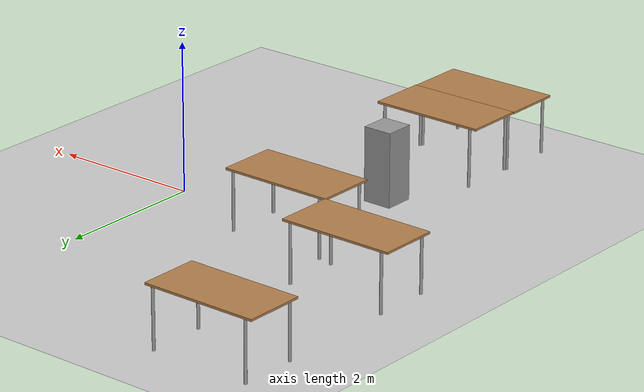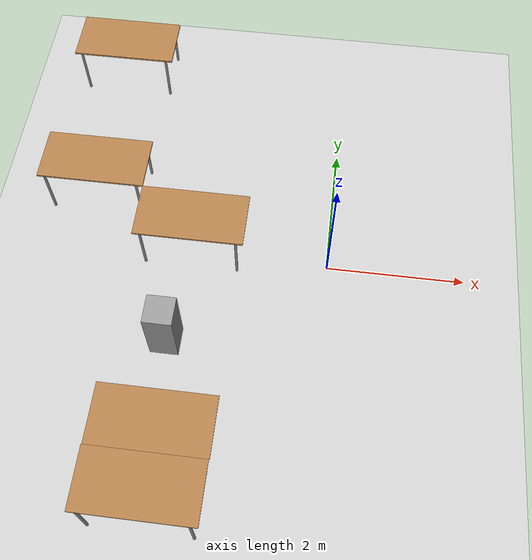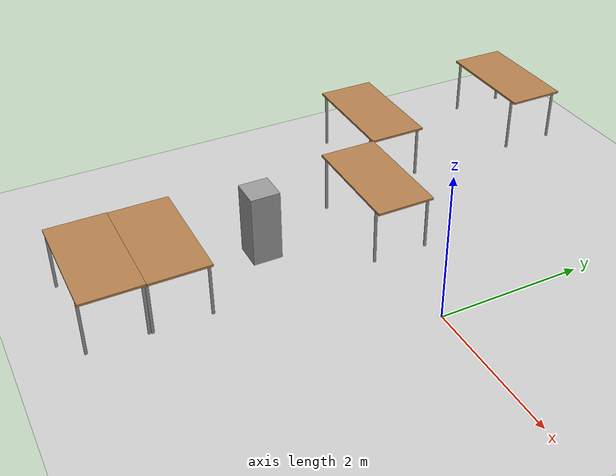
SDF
<sdf version="1.6">
 <world name="default">
  <model name="ground_plane">
   <static>1</static>
   <link name="link">
    <collision name="collision">
     <geometry><plane><normal>0 0 1</normal><size>100 100</size></plane></geometry>
     <surface><friction><ode><mu>100</mu><mu2>50</mu2></ode></friction></surface>
    </collision>
    <visual name="visual">
     <cast_shadows>0</cast_shadows>
     <geometry><plane><normal>0 0 1</normal><size>100 100</size></plane></geometry>
     <material>
      <script><uri>file://media/materials/scripts/gazebo.material</uri><name>Gazebo/Grey</name></script>
     </material>
    </visual>
   </link>
  </model>
  <model name="tablealt_0_clone_8">
   <link name="link">
    <inertial>
     <mass>1</mass>
     <inertia><ixx>1</ixx><ixy>0</ixy><ixz>0</ixz><iyy>1</iyy><iyz>0</iyz><izz>1</izz></inertia>
    </inertial>
    <visual name="back_right_leg">
     <pose>-0.68 -0.38 0.4 0 -0 0</pose>
     <geometry><cylinder><radius>0.02</radius><length>0.8</length></cylinder></geometry>
     <material>
      <script><uri>file://media/materials/scripts/gazebo.material</uri><name>Gazebo/Grey</name></script>
      <shader type="pixel"><normal_map>__default__</normal_map></shader>
      <ambient>0.3 0.3 0.3 1</ambient>
      <diffuse>0.7 0.7 0.7 1</diffuse>
      <specular>0.01 0.01 0.01 1</specular>
      <emissive>0 0 0 1</emissive>
     </material>
    </visual>
    <visual name="back_left_leg">
     <pose>-0.68 0.38 0.4 0 -0 0</pose>
     <geometry><cylinder><radius>0.02</radius><length>0.8</length></cylinder></geometry>
     <material>
      <script><uri>file://media/materials/scripts/gazebo.material</uri><name>Gazebo/Grey</name></script>
      <shader type="pixel"><normal_map>__default__</normal_map></shader>
      <ambient>0.3 0.3 0.3 1</ambient>
      <diffuse>0.7 0.7 0.7 1</diffuse>
      <specular>0.01 0.01 0.01 1</specular>
      <emissive>0 0 0 1</emissive>
     </material>
    </visual>
    <visual name="visual1">
     <pose>0 0 0.8 0 -0 0</pose>
     <geometry><box><size>1.57 0.8 0.03</size></box></geometry>
     <material>
      <script><uri>file://media/materials/scripts/gazebo.material</uri><name>Gazebo/Wood</name></script>
      <shader type="pixel"><normal_map>__default__</normal_map></shader>
      <ambient>0.92 0.92 0.68 1</ambient>
      <diffuse>1 1 1 1</diffuse>
      <specular>0.2 0.2 0.2 1</specular>
      <emissive>0 0 0 1</emissive>
     </material>
    </visual>
    <visual name="front_left_leg">
     <pose>0.68 0.38 0.4 0 -0 0</pose>
     <geometry><cylinder><radius>0.02</radius><length>0.8</length></cylinder></geometry>
     <material>
      <script><uri>file://media/materials/scripts/gazebo.material</uri><name>Gazebo/Grey</name></script>
      <shader type="pixel"><normal_map>__default__</normal_map></shader>
      <ambient>0.3 0.3 0.3 1</ambient>
      <diffuse>0.7 0.7 0.7 1</diffuse>
      <specular>0.01 0.01 0.01 1</specular>
      <emissive>0 0 0 1</emissive>
     </material>
    </visual>
    <visual name="front_right_leg">
     <pose>0.68 -0.38 0.4 0 -0 0</pose>
     <geometry><cylinder><radius>0.02</radius><length>0.8</length></cylinder></geometry>
     <material>
      <script><uri>file://media/materials/scripts/gazebo.material</uri><name>Gazebo/Grey</name></script>
      <shader type="pixel"><normal_map>__default__</normal_map></shader>
      <ambient>0.3 0.3 0.3 1</ambient>
      <diffuse>0.7 0.7 0.7 1</diffuse>
      <specular>0.01 0.01 0.01 1</specular>
      <emissive>0 0 0 1</emissive>
     </material>
    </visual>
    <collision name="front_right_leg">
     <pose>0.68 -0.38 0.4 0 -0 0</pose>
     <geometry><cylinder><radius>0.02</radius><length>0.8</length></cylinder></geometry>
     <surface>
      <friction>
       <ode><mu>1</mu><mu2>1</mu2><fdir1>0 0 0</fdir1><slip1>0</slip1><slip2>0</slip2></ode>
       <torsional>
        <coefficient>1</coefficient>
        <patch_radius>0</patch_radius>
        <surface_radius>0</surface_radius>
        <use_patch_radius>1</use_patch_radius>
        <ode><slip>0</slip></ode>
       </torsional>
      </friction>
      <bounce><restitution_coefficient>0</restitution_coefficient><threshold>1e+06</threshold></bounce>
      <contact>
       <collide_without_contact>0</collide_without_contact>
       <collide_without_contact_bitmask>1</collide_without_contact_bitmask>
       <collide_bitmask>1</collide_bitmask>
       <ode>
        <soft_cfm>0</soft_cfm>
        <soft_erp>0.2</soft_erp>
        <kp>1e+13</kp>
        <kd>1</kd>
        <max_vel>0.01</max_vel>
        <min_depth>0</min_depth>
       </ode>
       <bullet>
        <split_impulse>1</split_impulse>
        <split_impulse_penetration_threshold>-0.01</split_impulse_penetration_threshold>
        <soft_cfm>0</soft_cfm>
        <soft_erp>0.2</soft_erp>
        <kp>1e+13</kp>
        <kd>1</kd>
       </bullet>
      </contact>
     </surface>
    </collision>
    <collision name="surface">
     <pose>0 0 0.8 0 -0 0</pose>
     <geometry><box><size>1.5 0.8 0.03</size></box></geometry>
     <surface>
      <friction>
       <ode><mu>0.6</mu><mu2>0.6</mu2><fdir1>0 0 0</fdir1><slip1>0</slip1><slip2>0</slip2></ode>
       <torsional>
        <coefficient>1</coefficient>
        <patch_radius>0</patch_radius>
        <surface_radius>0</surface_radius>
        <use_patch_radius>1</use_patch_radius>
        <ode><slip>0</slip></ode>
       </torsional>
      </friction>
      <bounce><restitution_coefficient>0</restitution_coefficient><threshold>1e+06</threshold></bounce>
      <contact>
       <collide_without_contact>0</collide_without_contact>
       <collide_without_contact_bitmask>1</collide_without_contact_bitmask>
       <collide_bitmask>1</collide_bitmask>
       <ode>
        <soft_cfm>0</soft_cfm>
        <soft_erp>0.2</soft_erp>
        <kp>1e+13</kp>
        <kd>1</kd>
        <max_vel>0.01</max_vel>
        <min_depth>0</min_depth>
       </ode>
       <bullet>
        <split_impulse>1</split_impulse>
        <split_impulse_penetration_threshold>-0.01</split_impulse_penetration_threshold>
        <soft_cfm>0</soft_cfm>
        <soft_erp>0.2</soft_erp>
        <kp>1e+13</kp>
        <kd>1</kd>
       </bullet>
      </contact>
     </surface>
    </collision>
    <collision name="front_left_leg">
     <pose>0.68 0.38 0.4 0 -0 0</pose>
     <geometry><cylinder><radius>0.02</radius><length>0.8</length></cylinder></geometry>
     <surface>
      <friction>
       <ode><mu>1</mu><mu2>1</mu2><fdir1>0 0 0</fdir1><slip1>0</slip1><slip2>0</slip2></ode>
       <torsional>
        <coefficient>1</coefficient>
        <patch_radius>0</patch_radius>
        <surface_radius>0</surface_radius>
        <use_patch_radius>1</use_patch_radius>
        <ode><slip>0</slip></ode>
       </torsional>
      </friction>
      <bounce><restitution_coefficient>0</restitution_coefficient><threshold>1e+06</threshold></bounce>
      <contact>
       <collide_without_contact>0</collide_without_contact>
       <collide_without_contact_bitmask>1</collide_without_contact_bitmask>
       <collide_bitmask>1</collide_bitmask>
       <ode>
        <soft_cfm>0</soft_cfm>
        <soft_erp>0.2</soft_erp>
        <kp>1e+13</kp>
        <kd>1</kd>
        <max_vel>0.01</max_vel>
        <min_depth>0</min_depth>
       </ode>
       <bullet>
        <split_impulse>1</split_impulse>
        <split_impulse_penetration_threshold>-0.01</split_impulse_penetration_threshold>
        <soft_cfm>0</soft_cfm>
        <soft_erp>0.2</soft_erp>
        <kp>1e+13</kp>
        <kd>1</kd>
       </bullet>
      </contact>
     </surface>
    </collision>
    <collision name="back_left_leg">
     <pose>-0.68 0.38 0.4 0 -0 0</pose>
     <geometry><cylinder><radius>0.02</radius><length>0.8</length></cylinder></geometry>
     <surface>
      <friction>
       <ode><mu>1</mu><mu2>1</mu2><fdir1>0 0 0</fdir1><slip1>0</slip1><slip2>0</slip2></ode>
       <torsional>
        <coefficient>1</coefficient>
        <patch_radius>0</patch_radius>
        <surface_radius>0</surface_radius>
        <use_patch_radius>1</use_patch_radius>
        <ode><slip>0</slip></ode>
       </torsional>
      </friction>
      <bounce><restitution_coefficient>0</restitution_coefficient><threshold>1e+06</threshold></bounce>
      <contact>
       <collide_without_contact>0</collide_without_contact>
       <collide_without_contact_bitmask>1</collide_without_contact_bitmask>
       <collide_bitmask>1</collide_bitmask>
       <ode>
        <soft_cfm>0</soft_cfm>
        <soft_erp>0.2</soft_erp>
        <kp>1e+13</kp>
        <kd>1</kd>
        <max_vel>0.01</max_vel>
        <min_depth>0</min_depth>
       </ode>
       <bullet>
        <split_impulse>1</split_impulse>
        <split_impulse_penetration_threshold>-0.01</split_impulse_penetration_threshold>
        <soft_cfm>0</soft_cfm>
        <soft_erp>0.2</soft_erp>
        <kp>1e+13</kp>
        <kd>1</kd>
       </bullet>
      </contact>
     </surface>
    </collision>
    <collision name="back_right_leg">
     <pose>-0.68 -0.38 0.4 0 -0 0</pose>
     <geometry><cylinder><radius>0.02</radius><length>0.8</length></cylinder></geometry>
     <surface>
      <friction>
       <ode><mu>1</mu><mu2>1</mu2><fdir1>0 0 0</fdir1><slip1>0</slip1><slip2>0</slip2></ode>
       <torsional>
        <coefficient>1</coefficient>
        <patch_radius>0</patch_radius>
        <surface_radius>0</surface_radius>
        <use_patch_radius>1</use_patch_radius>
        <ode><slip>0</slip></ode>
       </torsional>
      </friction>
      <bounce><restitution_coefficient>0</restitution_coefficient><threshold>1e+06</threshold></bounce>
      <contact>
       <collide_without_contact>0</collide_without_contact>
       <collide_without_contact_bitmask>1</collide_without_contact_bitmask>
       <collide_bitmask>1</collide_bitmask>
       <ode>
        <soft_cfm>0</soft_cfm>
        <soft_erp>0.2</soft_erp>
        <kp>1e+13</kp>
        <kd>1</kd>
        <max_vel>0.01</max_vel>
        <min_depth>0</min_depth>
       </ode>
       <bullet>
        <split_impulse>1</split_impulse>
        <split_impulse_penetration_threshold>-0.01</split_impulse_penetration_threshold>
        <soft_cfm>0</soft_cfm>
        <soft_erp>0.2</soft_erp>
        <kp>1e+13</kp>
        <kd>1</kd>
       </bullet>
      </contact>
     </surface>
    </collision>
   </link>
   <static>1</static>
   <pose>-3.56 3.39 0 0 -0 0</pose>
  </model>
  <model name="tablealt_0_clone_19">
   <link name="link">
    <inertial>
     <mass>1</mass>
     <inertia><ixx>1</ixx><ixy>0</ixy><ixz>0</ixz><iyy>1</iyy><iyz>0</iyz><izz>1</izz></inertia>
    </inertial>
    <visual name="back_right_leg">
     <pose>-0.68 -0.38 0.4 0 -0 0</pose>
     <geometry><cylinder><radius>0.02</radius><length>0.8</length></cylinder></geometry>
     <material>
      <script><uri>file://media/materials/scripts/gazebo.material</uri><name>Gazebo/Grey</name></script>
      <shader type="pixel"><normal_map>__default__</normal_map></shader>
      <ambient>0.3 0.3 0.3 1</ambient>
      <diffuse>0.7 0.7 0.7 1</diffuse>
      <specular>0.01 0.01 0.01 1</specular>
      <emissive>0 0 0 1</emissive>
     </material>
    </visual>
    <visual name="back_left_leg">
     <pose>-0.68 0.38 0.4 0 -0 0</pose>
     <geometry><cylinder><radius>0.02</radius><length>0.8</length></cylinder></geometry>
     <material>
      <script><uri>file://media/materials/scripts/gazebo.material</uri><name>Gazebo/Grey</name></script>
      <shader type="pixel"><normal_map>__default__</normal_map></shader>
      <ambient>0.3 0.3 0.3 1</ambient>
      <diffuse>0.7 0.7 0.7 1</diffuse>
      <specular>0.01 0.01 0.01 1</specular>
      <emissive>0 0 0 1</emissive>
     </material>
    </visual>
    <visual name="visual1">
     <pose>0 0 0.8 0 -0 0</pose>
     <geometry><box><size>1.57 0.8 0.03</size></box></geometry>
     <material>
      <script><uri>file://media/materials/scripts/gazebo.material</uri><name>Gazebo/Wood</name></script>
      <shader type="pixel"><normal_map>__default__</normal_map></shader>
      <ambient>0.92 0.92 0.68 1</ambient>
      <diffuse>1 1 1 1</diffuse>
      <specular>0.2 0.2 0.2 1</specular>
      <emissive>0 0 0 1</emissive>
     </material>
    </visual>
    <visual name="front_left_leg">
     <pose>0.68 0.38 0.4 0 -0 0</pose>
     <geometry><cylinder><radius>0.02</radius><length>0.8</length></cylinder></geometry>
     <material>
      <script><uri>file://media/materials/scripts/gazebo.material</uri><name>Gazebo/Grey</name></script>
      <shader type="pixel"><normal_map>__default__</normal_map></shader>
      <ambient>0.3 0.3 0.3 1</ambient>
      <diffuse>0.7 0.7 0.7 1</diffuse>
      <specular>0.01 0.01 0.01 1</specular>
      <emissive>0 0 0 1</emissive>
     </material>
    </visual>
    <visual name="front_right_leg">
     <pose>0.68 -0.38 0.4 0 -0 0</pose>
     <geometry><cylinder><radius>0.02</radius><length>0.8</length></cylinder></geometry>
     <material>
      <script><uri>file://media/materials/scripts/gazebo.material</uri><name>Gazebo/Grey</name></script>
      <shader type="pixel"><normal_map>__default__</normal_map></shader>
      <ambient>0.3 0.3 0.3 1</ambient>
      <diffuse>0.7 0.7 0.7 1</diffuse>
      <specular>0.01 0.01 0.01 1</specular>
      <emissive>0 0 0 1</emissive>
     </material>
    </visual>
    <collision name="front_right_leg">
     <pose>0.68 -0.38 0.4 0 -0 0</pose>
     <geometry><cylinder><radius>0.02</radius><length>0.8</length></cylinder></geometry>
     <surface>
      <friction>
       <ode><mu>1</mu><mu2>1</mu2><fdir1>0 0 0</fdir1><slip1>0</slip1><slip2>0</slip2></ode>
       <torsional>
        <coefficient>1</coefficient>
        <patch_radius>0</patch_radius>
        <surface_radius>0</surface_radius>
        <use_patch_radius>1</use_patch_radius>
        <ode><slip>0</slip></ode>
       </torsional>
      </friction>
      <bounce><restitution_coefficient>0</restitution_coefficient><threshold>1e+06</threshold></bounce>
      <contact>
       <collide_without_contact>0</collide_without_contact>
       <collide_without_contact_bitmask>1</collide_without_contact_bitmask>
       <collide_bitmask>1</collide_bitmask>
       <ode>
        <soft_cfm>0</soft_cfm>
        <soft_erp>0.2</soft_erp>
        <kp>1e+13</kp>
        <kd>1</kd>
        <max_vel>0.01</max_vel>
        <min_depth>0</min_depth>
       </ode>
       <bullet>
        <split_impulse>1</split_impulse>
        <split_impulse_penetration_threshold>-0.01</split_impulse_penetration_threshold>
        <soft_cfm>0</soft_cfm>
        <soft_erp>0.2</soft_erp>
        <kp>1e+13</kp>
        <kd>1</kd>
       </bullet>
      </contact>
     </surface>
    </collision>
    <collision name="surface">
     <pose>0 0 0.8 0 -0 0</pose>
     <geometry><box><size>1.5 0.8 0.03</size></box></geometry>
     <surface>
      <friction>
       <ode><mu>0.6</mu><mu2>0.6</mu2><fdir1>0 0 0</fdir1><slip1>0</slip1><slip2>0</slip2></ode>
       <torsional>
        <coefficient>1</coefficient>
        <patch_radius>0</patch_radius>
        <surface_radius>0</surface_radius>
        <use_patch_radius>1</use_patch_radius>
        <ode><slip>0</slip></ode>
       </torsional>
      </friction>
      <bounce><restitution_coefficient>0</restitution_coefficient><threshold>1e+06</threshold></bounce>
      <contact>
       <collide_without_contact>0</collide_without_contact>
       <collide_without_contact_bitmask>1</collide_without_contact_bitmask>
       <collide_bitmask>1</collide_bitmask>
       <ode>
        <soft_cfm>0</soft_cfm>
        <soft_erp>0.2</soft_erp>
        <kp>1e+13</kp>
        <kd>1</kd>
        <max_vel>0.01</max_vel>
        <min_depth>0</min_depth>
       </ode>
       <bullet>
        <split_impulse>1</split_impulse>
        <split_impulse_penetration_threshold>-0.01</split_impulse_penetration_threshold>
        <soft_cfm>0</soft_cfm>
        <soft_erp>0.2</soft_erp>
        <kp>1e+13</kp>
        <kd>1</kd>
       </bullet>
      </contact>
     </surface>
    </collision>
    <collision name="front_left_leg">
     <pose>0.68 0.38 0.4 0 -0 0</pose>
     <geometry><cylinder><radius>0.02</radius><length>0.8</length></cylinder></geometry>
     <surface>
      <friction>
       <ode><mu>1</mu><mu2>1</mu2><fdir1>0 0 0</fdir1><slip1>0</slip1><slip2>0</slip2></ode>
       <torsional>
        <coefficient>1</coefficient>
        <patch_radius>0</patch_radius>
        <surface_radius>0</surface_radius>
        <use_patch_radius>1</use_patch_radius>
        <ode><slip>0</slip></ode>
       </torsional>
      </friction>
      <bounce><restitution_coefficient>0</restitution_coefficient><threshold>1e+06</threshold></bounce>
      <contact>
       <collide_without_contact>0</collide_without_contact>
       <collide_without_contact_bitmask>1</collide_without_contact_bitmask>
       <collide_bitmask>1</collide_bitmask>
       <ode>
        <soft_cfm>0</soft_cfm>
        <soft_erp>0.2</soft_erp>
        <kp>1e+13</kp>
        <kd>1</kd>
        <max_vel>0.01</max_vel>
        <min_depth>0</min_depth>
       </ode>
       <bullet>
        <split_impulse>1</split_impulse>
        <split_impulse_penetration_threshold>-0.01</split_impulse_penetration_threshold>
        <soft_cfm>0</soft_cfm>
        <soft_erp>0.2</soft_erp>
        <kp>1e+13</kp>
        <kd>1</kd>
       </bullet>
      </contact>
     </surface>
    </collision>
    <collision name="back_left_leg">
     <pose>-0.68 0.38 0.4 0 -0 0</pose>
     <geometry><cylinder><radius>0.02</radius><length>0.8</length></cylinder></geometry>
     <surface>
      <friction>
       <ode><mu>1</mu><mu2>1</mu2><fdir1>0 0 0</fdir1><slip1>0</slip1><slip2>0</slip2></ode>
       <torsional>
        <coefficient>1</coefficient>
        <patch_radius>0</patch_radius>
        <surface_radius>0</surface_radius>
        <use_patch_radius>1</use_patch_radius>
        <ode><slip>0</slip></ode>
       </torsional>
      </friction>
      <bounce><restitution_coefficient>0</restitution_coefficient><threshold>1e+06</threshold></bounce>
      <contact>
       <collide_without_contact>0</collide_without_contact>
       <collide_without_contact_bitmask>1</collide_without_contact_bitmask>
       <collide_bitmask>1</collide_bitmask>
       <ode>
        <soft_cfm>0</soft_cfm>
        <soft_erp>0.2</soft_erp>
        <kp>1e+13</kp>
        <kd>1</kd>
        <max_vel>0.01</max_vel>
        <min_depth>0</min_depth>
       </ode>
       <bullet>
        <split_impulse>1</split_impulse>
        <split_impulse_penetration_threshold>-0.01</split_impulse_penetration_threshold>
        <soft_cfm>0</soft_cfm>
        <soft_erp>0.2</soft_erp>
        <kp>1e+13</kp>
        <kd>1</kd>
       </bullet>
      </contact>
     </surface>
    </collision>
    <collision name="back_right_leg">
     <pose>-0.68 -0.38 0.4 0 -0 0</pose>
     <geometry><cylinder><radius>0.02</radius><length>0.8</length></cylinder></geometry>
     <surface>
      <friction>
       <ode><mu>1</mu><mu2>1</mu2><fdir1>0 0 0</fdir1><slip1>0</slip1><slip2>0</slip2></ode>
       <torsional>
        <coefficient>1</coefficient>
        <patch_radius>0</patch_radius>
        <surface_radius>0</surface_radius>
        <use_patch_radius>1</use_patch_radius>
        <ode><slip>0</slip></ode>
       </torsional>
      </friction>
      <bounce><restitution_coefficient>0</restitution_coefficient><threshold>1e+06</threshold></bounce>
      <contact>
       <collide_without_contact>0</collide_without_contact>
       <collide_without_contact_bitmask>1</collide_without_contact_bitmask>
       <collide_bitmask>1</collide_bitmask>
       <ode>
        <soft_cfm>0</soft_cfm>
        <soft_erp>0.2</soft_erp>
        <kp>1e+13</kp>
        <kd>1</kd>
        <max_vel>0.01</max_vel>
        <min_depth>0</min_depth>
       </ode>
       <bullet>
        <split_impulse>1</split_impulse>
        <split_impulse_penetration_threshold>-0.01</split_impulse_penetration_threshold>
        <soft_cfm>0</soft_cfm>
        <soft_erp>0.2</soft_erp>
        <kp>1e+13</kp>
        <kd>1</kd>
       </bullet>
      </contact>
     </surface>
    </collision>
   </link>
   <static>1</static>
   <pose>-3.56 0.99 0 0 -0 0</pose>
  </model>
  <model name="tablealt_0_clone_23">
   <link name="link">
    <inertial>
     <mass>1</mass>
     <inertia><ixx>1</ixx><ixy>0</ixy><ixz>0</ixz><iyy>1</iyy><iyz>0</iyz><izz>1</izz></inertia>
    </inertial>
    <visual name="back_right_leg">
     <pose>-0.68 -0.38 0.4 0 -0 0</pose>
     <geometry><cylinder><radius>0.02</radius><length>0.8</length></cylinder></geometry>
     <material>
      <script><uri>file://media/materials/scripts/gazebo.material</uri><name>Gazebo/Grey</name></script>
      <shader type="pixel"><normal_map>__default__</normal_map></shader>
      <ambient>0.3 0.3 0.3 1</ambient>
      <diffuse>0.7 0.7 0.7 1</diffuse>
      <specular>0.01 0.01 0.01 1</specular>
      <emissive>0 0 0 1</emissive>
     </material>
    </visual>
    <visual name="back_left_leg">
     <pose>-0.68 0.38 0.4 0 -0 0</pose>
     <geometry><cylinder><radius>0.02</radius><length>0.8</length></cylinder></geometry>
     <material>
      <script><uri>file://media/materials/scripts/gazebo.material</uri><name>Gazebo/Grey</name></script>
      <shader type="pixel"><normal_map>__default__</normal_map></shader>
      <ambient>0.3 0.3 0.3 1</ambient>
      <diffuse>0.7 0.7 0.7 1</diffuse>
      <specular>0.01 0.01 0.01 1</specular>
      <emissive>0 0 0 1</emissive>
     </material>
    </visual>
    <visual name="visual1">
     <pose>0 0 0.8 0 -0 0</pose>
     <geometry><box><size>1.57 0.8 0.03</size></box></geometry>
     <material>
      <script><uri>file://media/materials/scripts/gazebo.material</uri><name>Gazebo/Wood</name></script>
      <shader type="pixel"><normal_map>__default__</normal_map></shader>
      <ambient>0.92 0.92 0.68 1</ambient>
      <diffuse>1 1 1 1</diffuse>
      <specular>0.2 0.2 0.2 1</specular>
      <emissive>0 0 0 1</emissive>
     </material>
    </visual>
    <visual name="front_left_leg">
     <pose>0.68 0.38 0.4 0 -0 0</pose>
     <geometry><cylinder><radius>0.02</radius><length>0.8</length></cylinder></geometry>
     <material>
      <script><uri>file://media/materials/scripts/gazebo.material</uri><name>Gazebo/Grey</name></script>
      <shader type="pixel"><normal_map>__default__</normal_map></shader>
      <ambient>0.3 0.3 0.3 1</ambient>
      <diffuse>0.7 0.7 0.7 1</diffuse>
      <specular>0.01 0.01 0.01 1</specular>
      <emissive>0 0 0 1</emissive>
     </material>
    </visual>
    <visual name="front_right_leg">
     <pose>0.68 -0.38 0.4 0 -0 0</pose>
     <geometry><cylinder><radius>0.02</radius><length>0.8</length></cylinder></geometry>
     <material>
      <script><uri>file://media/materials/scripts/gazebo.material</uri><name>Gazebo/Grey</name></script>
      <shader type="pixel"><normal_map>__default__</normal_map></shader>
      <ambient>0.3 0.3 0.3 1</ambient>
      <diffuse>0.7 0.7 0.7 1</diffuse>
      <specular>0.01 0.01 0.01 1</specular>
      <emissive>0 0 0 1</emissive>
     </material>
    </visual>
    <collision name="front_right_leg">
     <pose>0.68 -0.38 0.4 0 -0 0</pose>
     <geometry><cylinder><radius>0.02</radius><length>0.8</length></cylinder></geometry>
     <surface>
      <friction>
       <ode><mu>1</mu><mu2>1</mu2><fdir1>0 0 0</fdir1><slip1>0</slip1><slip2>0</slip2></ode>
       <torsional>
        <coefficient>1</coefficient>
        <patch_radius>0</patch_radius>
        <surface_radius>0</surface_radius>
        <use_patch_radius>1</use_patch_radius>
        <ode><slip>0</slip></ode>
       </torsional>
      </friction>
      <bounce><restitution_coefficient>0</restitution_coefficient><threshold>1e+06</threshold></bounce>
      <contact>
       <collide_without_contact>0</collide_without_contact>
       <collide_without_contact_bitmask>1</collide_without_contact_bitmask>
       <collide_bitmask>1</collide_bitmask>
       <ode>
        <soft_cfm>0</soft_cfm>
        <soft_erp>0.2</soft_erp>
        <kp>1e+13</kp>
        <kd>1</kd>
        <max_vel>0.01</max_vel>
        <min_depth>0</min_depth>
       </ode>
       <bullet>
        <split_impulse>1</split_impulse>
        <split_impulse_penetration_threshold>-0.01</split_impulse_penetration_threshold>
        <soft_cfm>0</soft_cfm>
        <soft_erp>0.2</soft_erp>
        <kp>1e+13</kp>
        <kd>1</kd>
       </bullet>
      </contact>
     </surface>
    </collision>
    <collision name="surface">
     <pose>0 0 0.8 0 -0 0</pose>
     <geometry><box><size>1.5 0.8 0.03</size></box></geometry>
     <surface>
      <friction>
       <ode><mu>0.6</mu><mu2>0.6</mu2><fdir1>0 0 0</fdir1><slip1>0</slip1><slip2>0</slip2></ode>
       <torsional>
        <coefficient>1</coefficient>
        <patch_radius>0</patch_radius>
        <surface_radius>0</surface_radius>
        <use_patch_radius>1</use_patch_radius>
        <ode><slip>0</slip></ode>
       </torsional>
      </friction>
      <bounce><restitution_coefficient>0</restitution_coefficient><threshold>1e+06</threshold></bounce>
      <contact>
       <collide_without_contact>0</collide_without_contact>
       <collide_without_contact_bitmask>1</collide_without_contact_bitmask>
       <collide_bitmask>1</collide_bitmask>
       <ode>
        <soft_cfm>0</soft_cfm>
        <soft_erp>0.2</soft_erp>
        <kp>1e+13</kp>
        <kd>1</kd>
        <max_vel>0.01</max_vel>
        <min_depth>0</min_depth>
       </ode>
       <bullet>
        <split_impulse>1</split_impulse>
        <split_impulse_penetration_threshold>-0.01</split_impulse_penetration_threshold>
        <soft_cfm>0</soft_cfm>
        <soft_erp>0.2</soft_erp>
        <kp>1e+13</kp>
        <kd>1</kd>
       </bullet>
      </contact>
     </surface>
    </collision>
    <collision name="front_left_leg">
     <pose>0.68 0.38 0.4 0 -0 0</pose>
     <geometry><cylinder><radius>0.02</radius><length>0.8</length></cylinder></geometry>
     <surface>
      <friction>
       <ode><mu>1</mu><mu2>1</mu2><fdir1>0 0 0</fdir1><slip1>0</slip1><slip2>0</slip2></ode>
       <torsional>
        <coefficient>1</coefficient>
        <patch_radius>0</patch_radius>
        <surface_radius>0</surface_radius>
        <use_patch_radius>1</use_patch_radius>
        <ode><slip>0</slip></ode>
       </torsional>
      </friction>
      <bounce><restitution_coefficient>0</restitution_coefficient><threshold>1e+06</threshold></bounce>
      <contact>
       <collide_without_contact>0</collide_without_contact>
       <collide_without_contact_bitmask>1</collide_without_contact_bitmask>
       <collide_bitmask>1</collide_bitmask>
       <ode>
        <soft_cfm>0</soft_cfm>
        <soft_erp>0.2</soft_erp>
        <kp>1e+13</kp>
        <kd>1</kd>
        <max_vel>0.01</max_vel>
        <min_depth>0</min_depth>
       </ode>
       <bullet>
        <split_impulse>1</split_impulse>
        <split_impulse_penetration_threshold>-0.01</split_impulse_penetration_threshold>
        <soft_cfm>0</soft_cfm>
        <soft_erp>0.2</soft_erp>
        <kp>1e+13</kp>
        <kd>1</kd>
       </bullet>
      </contact>
     </surface>
    </collision>
    <collision name="back_left_leg">
     <pose>-0.68 0.38 0.4 0 -0 0</pose>
     <geometry><cylinder><radius>0.02</radius><length>0.8</length></cylinder></geometry>
     <surface>
      <friction>
       <ode><mu>1</mu><mu2>1</mu2><fdir1>0 0 0</fdir1><slip1>0</slip1><slip2>0</slip2></ode>
       <torsional>
        <coefficient>1</coefficient>
        <patch_radius>0</patch_radius>
        <surface_radius>0</surface_radius>
        <use_patch_radius>1</use_patch_radius>
        <ode><slip>0</slip></ode>
       </torsional>
      </friction>
      <bounce><restitution_coefficient>0</restitution_coefficient><threshold>1e+06</threshold></bounce>
      <contact>
       <collide_without_contact>0</collide_without_contact>
       <collide_without_contact_bitmask>1</collide_without_contact_bitmask>
       <collide_bitmask>1</collide_bitmask>
       <ode>
        <soft_cfm>0</soft_cfm>
        <soft_erp>0.2</soft_erp>
        <kp>1e+13</kp>
        <kd>1</kd>
        <max_vel>0.01</max_vel>
        <min_depth>0</min_depth>
       </ode>
       <bullet>
        <split_impulse>1</split_impulse>
        <split_impulse_penetration_threshold>-0.01</split_impulse_penetration_threshold>
        <soft_cfm>0</soft_cfm>
        <soft_erp>0.2</soft_erp>
        <kp>1e+13</kp>
        <kd>1</kd>
       </bullet>
      </contact>
     </surface>
    </collision>
    <collision name="back_right_leg">
     <pose>-0.68 -0.38 0.4 0 -0 0</pose>
     <geometry><cylinder><radius>0.02</radius><length>0.8</length></cylinder></geometry>
     <surface>
      <friction>
       <ode><mu>1</mu><mu2>1</mu2><fdir1>0 0 0</fdir1><slip1>0</slip1><slip2>0</slip2></ode>
       <torsional>
        <coefficient>1</coefficient>
        <patch_radius>0</patch_radius>
        <surface_radius>0</surface_radius>
        <use_patch_radius>1</use_patch_radius>
        <ode><slip>0</slip></ode>
       </torsional>
      </friction>
      <bounce><restitution_coefficient>0</restitution_coefficient><threshold>1e+06</threshold></bounce>
      <contact>
       <collide_without_contact>0</collide_without_contact>
       <collide_without_contact_bitmask>1</collide_without_contact_bitmask>
       <collide_bitmask>1</collide_bitmask>
       <ode>
        <soft_cfm>0</soft_cfm>
        <soft_erp>0.2</soft_erp>
        <kp>1e+13</kp>
        <kd>1</kd>
        <max_vel>0.01</max_vel>
        <min_depth>0</min_depth>
       </ode>
       <bullet>
        <split_impulse>1</split_impulse>
        <split_impulse_penetration_threshold>-0.01</split_impulse_penetration_threshold>
        <soft_cfm>0</soft_cfm>
        <soft_erp>0.2</soft_erp>
        <kp>1e+13</kp>
        <kd>1</kd>
       </bullet>
      </contact>
     </surface>
    </collision>
   </link>
   <static>1</static>
   <pose>-1.99 0.19 0 0 -0 0</pose>
  </model>
  <model name="tablealt_0_clone_26">
   <link name="link">
    <inertial>
     <mass>1</mass>
     <inertia><ixx>1</ixx><ixy>0</ixy><ixz>0</ixz><iyy>1</iyy><iyz>0</iyz><izz>1</izz></inertia>
    </inertial>
    <visual name="back_right_leg">
     <pose>-0.68 -0.38 0.4 0 -0 0</pose>
     <geometry><cylinder><radius>0.02</radius><length>0.8</length></cylinder></geometry>
     <material>
      <script><uri>file://media/materials/scripts/gazebo.material</uri><name>Gazebo/Grey</name></script>
      <shader type="pixel"><normal_map>__default__</normal_map></shader>
      <ambient>0.3 0.3 0.3 1</ambient>
      <diffuse>0.7 0.7 0.7 1</diffuse>
      <specular>0.01 0.01 0.01 1</specular>
      <emissive>0 0 0 1</emissive>
     </material>
    </visual>
    <visual name="back_left_leg">
     <pose>-0.68 0.38 0.4 0 -0 0</pose>
     <geometry><cylinder><radius>0.02</radius><length>0.8</length></cylinder></geometry>
     <material>
      <script><uri>file://media/materials/scripts/gazebo.material</uri><name>Gazebo/Grey</name></script>
      <shader type="pixel"><normal_map>__default__</normal_map></shader>
      <ambient>0.3 0.3 0.3 1</ambient>
      <diffuse>0.7 0.7 0.7 1</diffuse>
      <specular>0.01 0.01 0.01 1</specular>
      <emissive>0 0 0 1</emissive>
     </material>
    </visual>
    <visual name="visual1">
     <pose>0 0 0.8 0 -0 0</pose>
     <geometry><box><size>1.57 0.8 0.03</size></box></geometry>
     <material>
      <script><uri>file://media/materials/scripts/gazebo.material</uri><name>Gazebo/Wood</name></script>
      <shader type="pixel"><normal_map>__default__</normal_map></shader>
      <ambient>0.92 0.92 0.68 1</ambient>
      <diffuse>1 1 1 1</diffuse>
      <specular>0.2 0.2 0.2 1</specular>
      <emissive>0 0 0 1</emissive>
     </material>
    </visual>
    <visual name="front_left_leg">
     <pose>0.68 0.38 0.4 0 -0 0</pose>
     <geometry><cylinder><radius>0.02</radius><length>0.8</length></cylinder></geometry>
     <material>
      <script><uri>file://media/materials/scripts/gazebo.material</uri><name>Gazebo/Grey</name></script>
      <shader type="pixel"><normal_map>__default__</normal_map></shader>
      <ambient>0.3 0.3 0.3 1</ambient>
      <diffuse>0.7 0.7 0.7 1</diffuse>
      <specular>0.01 0.01 0.01 1</specular>
      <emissive>0 0 0 1</emissive>
     </material>
    </visual>
    <visual name="front_right_leg">
     <pose>0.68 -0.38 0.4 0 -0 0</pose>
     <geometry><cylinder><radius>0.02</radius><length>0.8</length></cylinder></geometry>
     <material>
      <script><uri>file://media/materials/scripts/gazebo.material</uri><name>Gazebo/Grey</name></script>
      <shader type="pixel"><normal_map>__default__</normal_map></shader>
      <ambient>0.3 0.3 0.3 1</ambient>
      <diffuse>0.7 0.7 0.7 1</diffuse>
      <specular>0.01 0.01 0.01 1</specular>
      <emissive>0 0 0 1</emissive>
     </material>
    </visual>
    <collision name="front_right_leg">
     <pose>0.68 -0.38 0.4 0 -0 0</pose>
     <geometry><cylinder><radius>0.02</radius><length>0.8</length></cylinder></geometry>
     <surface>
      <friction>
       <ode><mu>1</mu><mu2>1</mu2><fdir1>0 0 0</fdir1><slip1>0</slip1><slip2>0</slip2></ode>
       <torsional>
        <coefficient>1</coefficient>
        <patch_radius>0</patch_radius>
        <surface_radius>0</surface_radius>
        <use_patch_radius>1</use_patch_radius>
        <ode><slip>0</slip></ode>
       </torsional>
      </friction>
      <bounce><restitution_coefficient>0</restitution_coefficient><threshold>1e+06</threshold></bounce>
      <contact>
       <collide_without_contact>0</collide_without_contact>
       <collide_without_contact_bitmask>1</collide_without_contact_bitmask>
       <collide_bitmask>1</collide_bitmask>
       <ode>
        <soft_cfm>0</soft_cfm>
        <soft_erp>0.2</soft_erp>
        <kp>1e+13</kp>
        <kd>1</kd>
        <max_vel>0.01</max_vel>
        <min_depth>0</min_depth>
       </ode>
       <bullet>
        <split_impulse>1</split_impulse>
        <split_impulse_penetration_threshold>-0.01</split_impulse_penetration_threshold>
        <soft_cfm>0</soft_cfm>
        <soft_erp>0.2</soft_erp>
        <kp>1e+13</kp>
        <kd>1</kd>
       </bullet>
      </contact>
     </surface>
    </collision>
    <collision name="surface">
     <pose>0 0 0.8 0 -0 0</pose>
     <geometry><box><size>1.5 0.8 0.03</size></box></geometry>
     <surface>
      <friction>
       <ode><mu>0.6</mu><mu2>0.6</mu2><fdir1>0 0 0</fdir1><slip1>0</slip1><slip2>0</slip2></ode>
       <torsional>
        <coefficient>1</coefficient>
        <patch_radius>0</patch_radius>
        <surface_radius>0</surface_radius>
        <use_patch_radius>1</use_patch_radius>
        <ode><slip>0</slip></ode>
       </torsional>
      </friction>
      <bounce><restitution_coefficient>0</restitution_coefficient><threshold>1e+06</threshold></bounce>
      <contact>
       <collide_without_contact>0</collide_without_contact>
       <collide_without_contact_bitmask>1</collide_without_contact_bitmask>
       <collide_bitmask>1</collide_bitmask>
       <ode>
        <soft_cfm>0</soft_cfm>
        <soft_erp>0.2</soft_erp>
        <kp>1e+13</kp>
        <kd>1</kd>
        <max_vel>0.01</max_vel>
        <min_depth>0</min_depth>
       </ode>
       <bullet>
        <split_impulse>1</split_impulse>
        <split_impulse_penetration_threshold>-0.01</split_impulse_penetration_threshold>
        <soft_cfm>0</soft_cfm>
        <soft_erp>0.2</soft_erp>
        <kp>1e+13</kp>
        <kd>1</kd>
       </bullet>
      </contact>
     </surface>
    </collision>
    <collision name="front_left_leg">
     <pose>0.68 0.38 0.4 0 -0 0</pose>
     <geometry><cylinder><radius>0.02</radius><length>0.8</length></cylinder></geometry>
     <surface>
      <friction>
       <ode><mu>1</mu><mu2>1</mu2><fdir1>0 0 0</fdir1><slip1>0</slip1><slip2>0</slip2></ode>
       <torsional>
        <coefficient>1</coefficient>
        <patch_radius>0</patch_radius>
        <surface_radius>0</surface_radius>
        <use_patch_radius>1</use_patch_radius>
        <ode><slip>0</slip></ode>
       </torsional>
      </friction>
      <bounce><restitution_coefficient>0</restitution_coefficient><threshold>1e+06</threshold></bounce>
      <contact>
       <collide_without_contact>0</collide_without_contact>
       <collide_without_contact_bitmask>1</collide_without_contact_bitmask>
       <collide_bitmask>1</collide_bitmask>
       <ode>
        <soft_cfm>0</soft_cfm>
        <soft_erp>0.2</soft_erp>
        <kp>1e+13</kp>
        <kd>1</kd>
        <max_vel>0.01</max_vel>
        <min_depth>0</min_depth>
       </ode>
       <bullet>
        <split_impulse>1</split_impulse>
        <split_impulse_penetration_threshold>-0.01</split_impulse_penetration_threshold>
        <soft_cfm>0</soft_cfm>
        <soft_erp>0.2</soft_erp>
        <kp>1e+13</kp>
        <kd>1</kd>
       </bullet>
      </contact>
     </surface>
    </collision>
    <collision name="back_left_leg">
     <pose>-0.68 0.38 0.4 0 -0 0</pose>
     <geometry><cylinder><radius>0.02</radius><length>0.8</length></cylinder></geometry>
     <surface>
      <friction>
       <ode><mu>1</mu><mu2>1</mu2><fdir1>0 0 0</fdir1><slip1>0</slip1><slip2>0</slip2></ode>
       <torsional>
        <coefficient>1</coefficient>
        <patch_radius>0</patch_radius>
        <surface_radius>0</surface_radius>
        <use_patch_radius>1</use_patch_radius>
        <ode><slip>0</slip></ode>
       </torsional>
      </friction>
      <bounce><restitution_coefficient>0</restitution_coefficient><threshold>1e+06</threshold></bounce>
      <contact>
       <collide_without_contact>0</collide_without_contact>
       <collide_without_contact_bitmask>1</collide_without_contact_bitmask>
       <collide_bitmask>1</collide_bitmask>
       <ode>
        <soft_cfm>0</soft_cfm>
        <soft_erp>0.2</soft_erp>
        <kp>1e+13</kp>
        <kd>1</kd>
        <max_vel>0.01</max_vel>
        <min_depth>0</min_depth>
       </ode>
       <bullet>
        <split_impulse>1</split_impulse>
        <split_impulse_penetration_threshold>-0.01</split_impulse_penetration_threshold>
        <soft_cfm>0</soft_cfm>
        <soft_erp>0.2</soft_erp>
        <kp>1e+13</kp>
        <kd>1</kd>
       </bullet>
      </contact>
     </surface>
    </collision>
    <collision name="back_right_leg">
     <pose>-0.68 -0.38 0.4 0 -0 0</pose>
     <geometry><cylinder><radius>0.02</radius><length>0.8</length></cylinder></geometry>
     <surface>
      <friction>
       <ode><mu>1</mu><mu2>1</mu2><fdir1>0 0 0</fdir1><slip1>0</slip1><slip2>0</slip2></ode>
       <torsional>
        <coefficient>1</coefficient>
        <patch_radius>0</patch_radius>
        <surface_radius>0</surface_radius>
        <use_patch_radius>1</use_patch_radius>
        <ode><slip>0</slip></ode>
       </torsional>
      </friction>
      <bounce><restitution_coefficient>0</restitution_coefficient><threshold>1e+06</threshold></bounce>
      <contact>
       <collide_without_contact>0</collide_without_contact>
       <collide_without_contact_bitmask>1</collide_without_contact_bitmask>
       <collide_bitmask>1</collide_bitmask>
       <ode>
        <soft_cfm>0</soft_cfm>
        <soft_erp>0.2</soft_erp>
        <kp>1e+13</kp>
        <kd>1</kd>
        <max_vel>0.01</max_vel>
        <min_depth>0</min_depth>
       </ode>
       <bullet>
        <split_impulse>1</split_impulse>
        <split_impulse_penetration_threshold>-0.01</split_impulse_penetration_threshold>
        <soft_cfm>0</soft_cfm>
        <soft_erp>0.2</soft_erp>
        <kp>1e+13</kp>
        <kd>1</kd>
       </bullet>
      </contact>
     </surface>
    </collision>
   </link>
   <static>1</static>
   <pose>-1.99 -2.8 0 0 -0 0</pose>
  </model>
  <model name="tablealt_0_clone_29">
   <link name="link">
    <inertial>
     <mass>1</mass>
     <inertia><ixx>1</ixx><ixy>0</ixy><ixz>0</ixz><iyy>1</iyy><iyz>0</iyz><izz>1</izz></inertia>
    </inertial>
    <visual name="back_right_leg">
     <pose>-0.68 -0.38 0.4 0 -0 0</pose>
     <geometry><cylinder><radius>0.02</radius><length>0.8</length></cylinder></geometry>
     <material>
      <script><uri>file://media/materials/scripts/gazebo.material</uri><name>Gazebo/Grey</name></script>
      <shader type="pixel"><normal_map>__default__</normal_map></shader>
      <ambient>0.3 0.3 0.3 1</ambient>
      <diffuse>0.7 0.7 0.7 1</diffuse>
      <specular>0.01 0.01 0.01 1</specular>
      <emissive>0 0 0 1</emissive>
     </material>
    </visual>
    <visual name="back_left_leg">
     <pose>-0.68 0.38 0.4 0 -0 0</pose>
     <geometry><cylinder><radius>0.02</radius><length>0.8</length></cylinder></geometry>
     <material>
      <script><uri>file://media/materials/scripts/gazebo.material</uri><name>Gazebo/Grey</name></script>
      <shader type="pixel"><normal_map>__default__</normal_map></shader>
      <ambient>0.3 0.3 0.3 1</ambient>
      <diffuse>0.7 0.7 0.7 1</diffuse>
      <specular>0.01 0.01 0.01 1</specular>
      <emissive>0 0 0 1</emissive>
     </material>
    </visual>
    <visual name="visual1">
     <pose>0 0 0.8 0 -0 0</pose>
     <geometry><box><size>1.57 0.8 0.03</size></box></geometry>
     <material>
      <script><uri>file://media/materials/scripts/gazebo.material</uri><name>Gazebo/Wood</name></script>
      <shader type="pixel"><normal_map>__default__</normal_map></shader>
      <ambient>0.92 0.92 0.68 1</ambient>
      <diffuse>1 1 1 1</diffuse>
      <specular>0.2 0.2 0.2 1</specular>
      <emissive>0 0 0 1</emissive>
     </material>
    </visual>
    <visual name="front_left_leg">
     <pose>0.68 0.38 0.4 0 -0 0</pose>
     <geometry><cylinder><radius>0.02</radius><length>0.8</length></cylinder></geometry>
     <material>
      <script><uri>file://media/materials/scripts/gazebo.material</uri><name>Gazebo/Grey</name></script>
      <shader type="pixel"><normal_map>__default__</normal_map></shader>
      <ambient>0.3 0.3 0.3 1</ambient>
      <diffuse>0.7 0.7 0.7 1</diffuse>
      <specular>0.01 0.01 0.01 1</specular>
      <emissive>0 0 0 1</emissive>
     </material>
    </visual>
    <visual name="front_right_leg">
     <pose>0.68 -0.38 0.4 0 -0 0</pose>
     <geometry><cylinder><radius>0.02</radius><length>0.8</length></cylinder></geometry>
     <material>
      <script><uri>file://media/materials/scripts/gazebo.material</uri><name>Gazebo/Grey</name></script>
      <shader type="pixel"><normal_map>__default__</normal_map></shader>
      <ambient>0.3 0.3 0.3 1</ambient>
      <diffuse>0.7 0.7 0.7 1</diffuse>
      <specular>0.01 0.01 0.01 1</specular>
      <emissive>0 0 0 1</emissive>
     </material>
    </visual>
    <collision name="front_right_leg">
     <pose>0.68 -0.38 0.4 0 -0 0</pose>
     <geometry><cylinder><radius>0.02</radius><length>0.8</length></cylinder></geometry>
     <surface>
      <friction>
       <ode><mu>1</mu><mu2>1</mu2><fdir1>0 0 0</fdir1><slip1>0</slip1><slip2>0</slip2></ode>
       <torsional>
        <coefficient>1</coefficient>
        <patch_radius>0</patch_radius>
        <surface_radius>0</surface_radius>
        <use_patch_radius>1</use_patch_radius>
        <ode><slip>0</slip></ode>
       </torsional>
      </friction>
      <bounce><restitution_coefficient>0</restitution_coefficient><threshold>1e+06</threshold></bounce>
      <contact>
       <collide_without_contact>0</collide_without_contact>
       <collide_without_contact_bitmask>1</collide_without_contact_bitmask>
       <collide_bitmask>1</collide_bitmask>
       <ode>
        <soft_cfm>0</soft_cfm>
        <soft_erp>0.2</soft_erp>
        <kp>1e+13</kp>
        <kd>1</kd>
        <max_vel>0.01</max_vel>
        <min_depth>0</min_depth>
       </ode>
       <bullet>
        <split_impulse>1</split_impulse>
        <split_impulse_penetration_threshold>-0.01</split_impulse_penetration_threshold>
        <soft_cfm>0</soft_cfm>
        <soft_erp>0.2</soft_erp>
        <kp>1e+13</kp>
        <kd>1</kd>
       </bullet>
      </contact>
     </surface>
    </collision>
    <collision name="surface">
     <pose>0 0 0.8 0 -0 0</pose>
     <geometry><box><size>1.5 0.8 0.03</size></box></geometry>
     <surface>
      <friction>
       <ode><mu>0.6</mu><mu2>0.6</mu2><fdir1>0 0 0</fdir1><slip1>0</slip1><slip2>0</slip2></ode>
       <torsional>
        <coefficient>1</coefficient>
        <patch_radius>0</patch_radius>
        <surface_radius>0</surface_radius>
        <use_patch_radius>1</use_patch_radius>
        <ode><slip>0</slip></ode>
       </torsional>
      </friction>
      <bounce><restitution_coefficient>0</restitution_coefficient><threshold>1e+06</threshold></bounce>
      <contact>
       <collide_without_contact>0</collide_without_contact>
       <collide_without_contact_bitmask>1</collide_without_contact_bitmask>
       <collide_bitmask>1</collide_bitmask>
       <ode>
        <soft_cfm>0</soft_cfm>
        <soft_erp>0.2</soft_erp>
        <kp>1e+13</kp>
        <kd>1</kd>
        <max_vel>0.01</max_vel>
        <min_depth>0</min_depth>
       </ode>
       <bullet>
        <split_impulse>1</split_impulse>
        <split_impulse_penetration_threshold>-0.01</split_impulse_penetration_threshold>
        <soft_cfm>0</soft_cfm>
        <soft_erp>0.2</soft_erp>
        <kp>1e+13</kp>
        <kd>1</kd>
       </bullet>
      </contact>
     </surface>
    </collision>
    <collision name="front_left_leg">
     <pose>0.68 0.38 0.4 0 -0 0</pose>
     <geometry><cylinder><radius>0.02</radius><length>0.8</length></cylinder></geometry>
     <surface>
      <friction>
       <ode><mu>1</mu><mu2>1</mu2><fdir1>0 0 0</fdir1><slip1>0</slip1><slip2>0</slip2></ode>
       <torsional>
        <coefficient>1</coefficient>
        <patch_radius>0</patch_radius>
        <surface_radius>0</surface_radius>
        <use_patch_radius>1</use_patch_radius>
        <ode><slip>0</slip></ode>
       </torsional>
      </friction>
      <bounce><restitution_coefficient>0</restitution_coefficient><threshold>1e+06</threshold></bounce>
      <contact>
       <collide_without_contact>0</collide_without_contact>
       <collide_without_contact_bitmask>1</collide_without_contact_bitmask>
       <collide_bitmask>1</collide_bitmask>
       <ode>
        <soft_cfm>0</soft_cfm>
        <soft_erp>0.2</soft_erp>
        <kp>1e+13</kp>
        <kd>1</kd>
        <max_vel>0.01</max_vel>
        <min_depth>0</min_depth>
       </ode>
       <bullet>
        <split_impulse>1</split_impulse>
        <split_impulse_penetration_threshold>-0.01</split_impulse_penetration_threshold>
        <soft_cfm>0</soft_cfm>
        <soft_erp>0.2</soft_erp>
        <kp>1e+13</kp>
        <kd>1</kd>
       </bullet>
      </contact>
     </surface>
    </collision>
    <collision name="back_left_leg">
     <pose>-0.68 0.38 0.4 0 -0 0</pose>
     <geometry><cylinder><radius>0.02</radius><length>0.8</length></cylinder></geometry>
     <surface>
      <friction>
       <ode><mu>1</mu><mu2>1</mu2><fdir1>0 0 0</fdir1><slip1>0</slip1><slip2>0</slip2></ode>
       <torsional>
        <coefficient>1</coefficient>
        <patch_radius>0</patch_radius>
        <surface_radius>0</surface_radius>
        <use_patch_radius>1</use_patch_radius>
        <ode><slip>0</slip></ode>
       </torsional>
      </friction>
      <bounce><restitution_coefficient>0</restitution_coefficient><threshold>1e+06</threshold></bounce>
      <contact>
       <collide_without_contact>0</collide_without_contact>
       <collide_without_contact_bitmask>1</collide_without_contact_bitmask>
       <collide_bitmask>1</collide_bitmask>
       <ode>
        <soft_cfm>0</soft_cfm>
        <soft_erp>0.2</soft_erp>
        <kp>1e+13</kp>
        <kd>1</kd>
        <max_vel>0.01</max_vel>
        <min_depth>0</min_depth>
       </ode>
       <bullet>
        <split_impulse>1</split_impulse>
        <split_impulse_penetration_threshold>-0.01</split_impulse_penetration_threshold>
        <soft_cfm>0</soft_cfm>
        <soft_erp>0.2</soft_erp>
        <kp>1e+13</kp>
        <kd>1</kd>
       </bullet>
      </contact>
     </surface>
    </collision>
    <collision name="back_right_leg">
     <pose>-0.68 -0.38 0.4 0 -0 0</pose>
     <geometry><cylinder><radius>0.02</radius><length>0.8</length></cylinder></geometry>
     <surface>
      <friction>
       <ode><mu>1</mu><mu2>1</mu2><fdir1>0 0 0</fdir1><slip1>0</slip1><slip2>0</slip2></ode>
       <torsional>
        <coefficient>1</coefficient>
        <patch_radius>0</patch_radius>
        <surface_radius>0</surface_radius>
        <use_patch_radius>1</use_patch_radius>
        <ode><slip>0</slip></ode>
       </torsional>
      </friction>
      <bounce><restitution_coefficient>0</restitution_coefficient><threshold>1e+06</threshold></bounce>
      <contact>
       <collide_without_contact>0</collide_without_contact>
       <collide_without_contact_bitmask>1</collide_without_contact_bitmask>
       <collide_bitmask>1</collide_bitmask>
       <ode>
        <soft_cfm>0</soft_cfm>
        <soft_erp>0.2</soft_erp>
        <kp>1e+13</kp>
        <kd>1</kd>
        <max_vel>0.01</max_vel>
        <min_depth>0</min_depth>
       </ode>
       <bullet>
        <split_impulse>1</split_impulse>
        <split_impulse_penetration_threshold>-0.01</split_impulse_penetration_threshold>
        <soft_cfm>0</soft_cfm>
        <soft_erp>0.2</soft_erp>
        <kp>1e+13</kp>
        <kd>1</kd>
       </bullet>
      </contact>
     </surface>
    </collision>
   </link>
   <static>1</static>
   <pose>-2 -3.6 0 0 -0 0</pose>
  </model>
  <model name="plantbox_clone_clone">
   <link name="link_0">
    <inertial>
     <mass>1</mass>
     <inertia>
      <ixx>0.166667</ixx>
      <ixy>0</ixy>
      <ixz>0</ixz>
      <iyy>0.166667</iyy>
      <iyz>0</iyz>
      <izz>0.166667</izz>
     </inertia>
    </inertial>
    <visual name="visual">
     <geometry><box><size>0.4 0.4 1</size></box></geometry>
     <material>
      <lighting>1</lighting>
      <script><uri>file://media/materials/scripts/gazebo.material</uri><name>Gazebo/Grey</name></script>
      <shader type="pixel"><normal_map>__default__</normal_map></shader>
      <ambient>0.3 0.3 0.3 1</ambient>
      <diffuse>0.92 0.92 0.92 1</diffuse>
      <specular>0.92 0.92 0.92 1</specular>
      <emissive>0 0 0 1</emissive>
     </material>
    </visual>
    <collision name="collision">
     <geometry><box><size>0.4 0.4 1</size></box></geometry>
     <surface>
      <friction>
       <ode><mu>1</mu><mu2>1</mu2><fdir1>0 0 0</fdir1><slip1>0</slip1><slip2>0</slip2></ode>
       <torsional>
        <coefficient>1</coefficient>
        <patch_radius>0</patch_radius>
        <surface_radius>0</surface_radius>
        <use_patch_radius>1</use_patch_radius>
        <ode><slip>0</slip></ode>
       </torsional>
      </friction>
      <bounce><restitution_coefficient>0</restitution_coefficient><threshold>1e+06</threshold></bounce>
      <contact>
       <collide_without_contact>0</collide_without_contact>
       <collide_without_contact_bitmask>1</collide_without_contact_bitmask>
       <collide_bitmask>1</collide_bitmask>
       <ode>
        <soft_cfm>0</soft_cfm>
        <soft_erp>0.2</soft_erp>
        <kp>1e+13</kp>
        <kd>1</kd>
        <max_vel>0.01</max_vel>
        <min_depth>0</min_depth>
       </ode>
       <bullet>
        <split_impulse>1</split_impulse>
        <split_impulse_penetration_threshold>-0.01</split_impulse_penetration_threshold>
        <soft_cfm>0</soft_cfm>
        <soft_erp>0.2</soft_erp>
        <kp>1e+13</kp>
        <kd>1</kd>
       </bullet>
      </contact>
     </surface>
    </collision>
   </link>
   <static>0</static>
   <pose>-2.13872 -1.41001 0.499999 2e-06 -4e-06 3e-06</pose>
  </model>
 </world>
</sdf>
